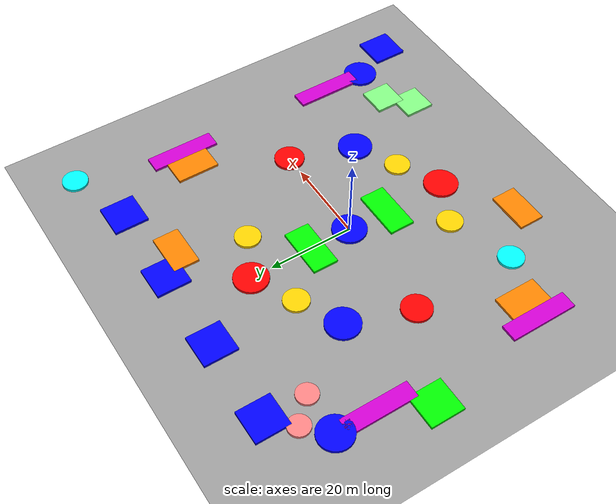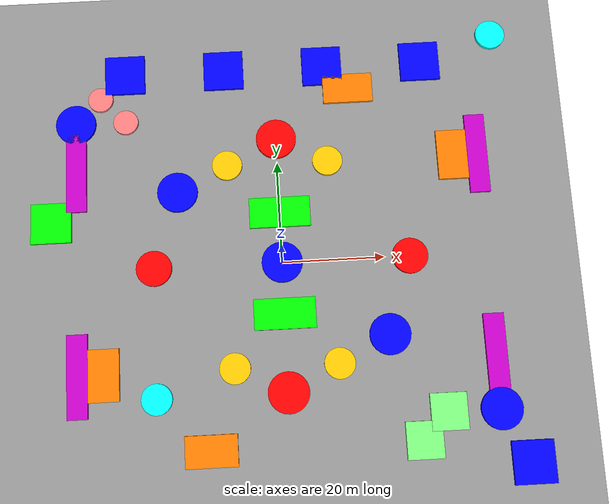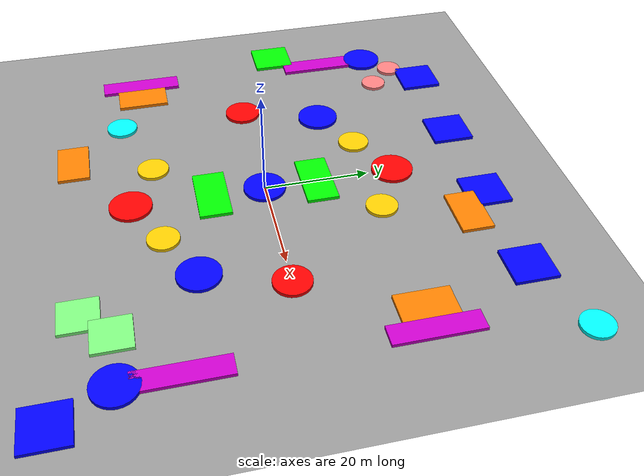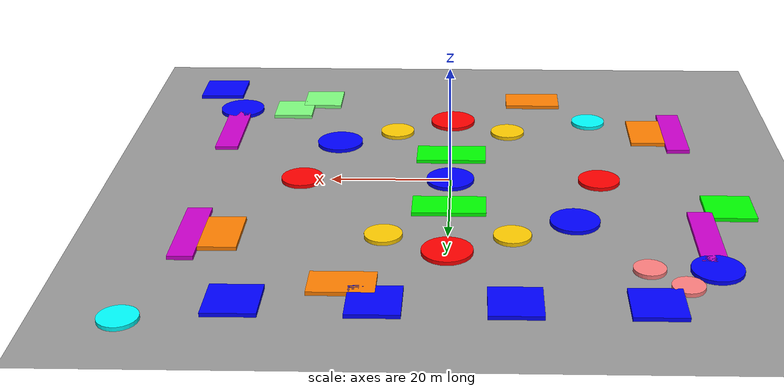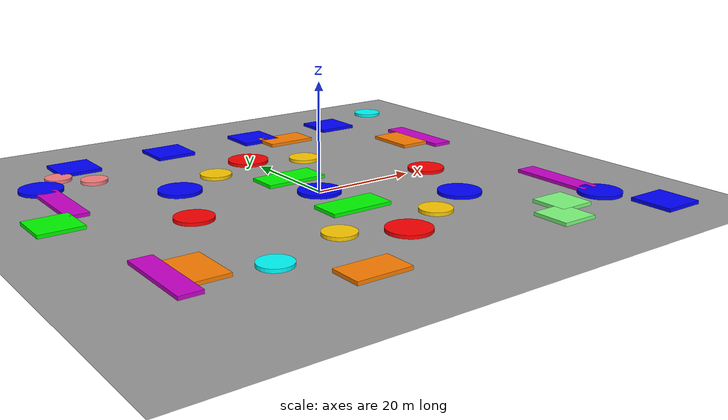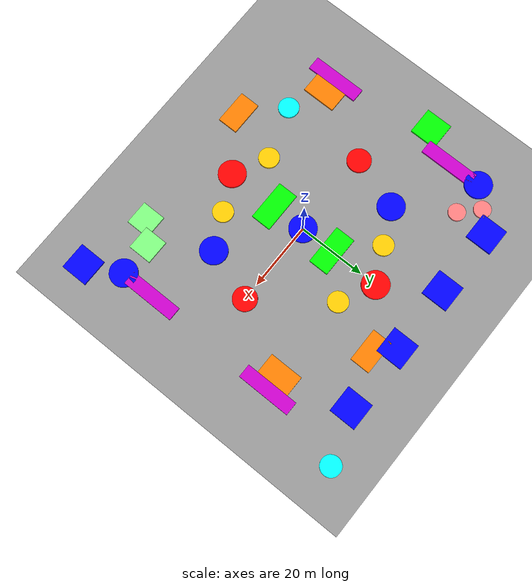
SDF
<sdf version="1.9">
 <world name="default">
  <physics type="ode">
   <max_step_size>0.01</max_step_size>
   <real_time_update_rate>60</real_time_update_rate>
  </physics>
  <model name="ground_plane">
   <static>true</static>
   <link name="link">
    <collision name="collision">
     <geometry><plane><normal>0 0 1</normal><size>100 100</size></plane></geometry>
     <surface><contact><collide_without_contact_bitmask>0x01</collide_without_contact_bitmask></contact></surface>
    </collision>
    <visual name="visual">
     <geometry><plane><normal>0 0 1</normal><size>100 100</size></plane></geometry>
     <material><ambient>0.6 0.6 0.6 1</ambient><diffuse>0.6 0.6 0.6 1</diffuse></material>
    </visual>
   </link>
  </model>
  <model name="moving_cylinder_1">
   <pose>-40.0 30.0 0 0 0 0</pose>
   <link name="moving_link">
    <gravity>false</gravity>
    <visual name="visual">
     <geometry><cylinder><radius>4.0</radius><length>1.0</length></cylinder></geometry>
     <material><ambient>0 0 1 1</ambient></material>
    </visual>
   </link>
   <plugin name="MoverPluginC" filename="/home/sohail/gazeb/GAZEBO_MOV/build/libMoverPluginC.so">
    <link_name>moving_link</link_name>
    <direction>1 0 0</direction>
    <amplitude>0</amplitude>
    <speed>0</speed>
    <turnaround_threshold>0.5</turnaround_threshold>
   </plugin>
  </model>
  <model name="moving_cylinder_2">
   <pose>-20.0 15.0 0 0 0 0</pose>
   <link name="moving_link">
    <gravity>false</gravity>
    <visual name="visual">
     <geometry><cylinder><radius>4.0</radius><length>1.0</length></cylinder></geometry>
     <material><ambient>0 0 1 1</ambient></material>
    </visual>
   </link>
   <plugin name="MoverPluginC" filename="/home/sohail/gazeb/GAZEBO_MOV/build/libMoverPluginC.so">
    <link_name>moving_link</link_name>
    <direction>1 0 0</direction>
    <amplitude>0</amplitude>
    <speed>0</speed>
    <turnaround_threshold>0.5</turnaround_threshold>
   </plugin>
  </model>
  <model name="moving_cylinder_3">
   <link name="moving_link">
    <gravity>false</gravity>
    <visual name="visual">
     <geometry><cylinder><radius>4.0</radius><length>1.0</length></cylinder></geometry>
     <material><ambient>0 0 1 1</ambient></material>
    </visual>
   </link>
   <plugin name="MoverPluginC" filename="/home/sohail/gazeb/GAZEBO_MOV/build/libMoverPluginC.so">
    <link_name>moving_link</link_name>
    <direction>1 0 0</direction>
    <amplitude>0</amplitude>
    <speed>0</speed>
    <turnaround_threshold>0.5</turnaround_threshold>
   </plugin>
  </model>
  <model name="moving_cylinder_4">
   <pose>20.0 -15.0 0 0 0 0</pose>
   <link name="moving_link">
    <gravity>false</gravity>
    <visual name="visual">
     <geometry><cylinder><radius>4.0</radius><length>1.0</length></cylinder></geometry>
     <material><ambient>0 0 1 1</ambient></material>
    </visual>
   </link>
   <plugin name="MoverPluginC" filename="/home/sohail/gazeb/GAZEBO_MOV/build/libMoverPluginC.so">
    <link_name>moving_link</link_name>
    <direction>1 0 0</direction>
    <amplitude>0</amplitude>
    <speed>0</speed>
    <turnaround_threshold>0.5</turnaround_threshold>
   </plugin>
  </model>
  <model name="moving_cylinder_5">
   <pose>40.0 -30.0 0 0 0 0</pose>
   <link name="moving_link">
    <gravity>false</gravity>
    <visual name="visual">
     <geometry><cylinder><radius>4.0</radius><length>1.0</length></cylinder></geometry>
     <material><ambient>0 0 1 1</ambient></material>
    </visual>
   </link>
   <plugin name="MoverPluginC" filename="/home/sohail/gazeb/GAZEBO_MOV/build/libMoverPluginC.so">
    <link_name>moving_link</link_name>
    <direction>1 0 0</direction>
    <amplitude>0</amplitude>
    <speed>0</speed>
    <turnaround_threshold>0.5</turnaround_threshold>
   </plugin>
  </model>
  <model name="moving_box_6">
   <pose>-30.0 40.0 0 0 0 0</pose>
   <link name="moving_link">
    <gravity>false</gravity>
    <visual name="visual">
     <geometry><box><size>8.0 8.0 1.0</size></box></geometry>
     <material><ambient>0 0 1 1</ambient></material>
    </visual>
   </link>
   <plugin name="MoverPluginC" filename="/home/sohail/gazeb/GAZEBO_MOV/build/libMoverPluginC.so">
    <link_name>moving_link</link_name>
    <direction>0 -1 0</direction>
    <amplitude>0</amplitude>
    <speed>0</speed>
    <turnaround_threshold>0.5</turnaround_threshold>
   </plugin>
  </model>
  <model name="moving_box_7">
   <pose>-10.0 40.0 0 0 0 0</pose>
   <link name="moving_link">
    <gravity>false</gravity>
    <visual name="visual">
     <geometry><box><size>8.0 8.0 1.0</size></box></geometry>
     <material><ambient>0 0 1 1</ambient></material>
    </visual>
   </link>
   <plugin name="MoverPluginC" filename="/home/sohail/gazeb/GAZEBO_MOV/build/libMoverPluginC.so">
    <link_name>moving_link</link_name>
    <direction>0 -1 0</direction>
    <amplitude>0</amplitude>
    <speed>0</speed>
    <turnaround_threshold>0.5</turnaround_threshold>
   </plugin>
  </model>
  <model name="moving_box_8">
   <pose>10.0 40.0 0 0 0 0</pose>
   <link name="moving_link">
    <gravity>false</gravity>
    <visual name="visual">
     <geometry><box><size>8.0 8.0 1.0</size></box></geometry>
     <material><ambient>0 0 1 1</ambient></material>
    </visual>
   </link>
   <plugin name="MoverPluginC" filename="/home/sohail/gazeb/GAZEBO_MOV/build/libMoverPluginC.so">
    <link_name>moving_link</link_name>
    <direction>0 -1 0</direction>
    <amplitude>0</amplitude>
    <speed>0</speed>
    <turnaround_threshold>0.5</turnaround_threshold>
   </plugin>
  </model>
  <model name="moving_box_9">
   <pose>30.0 40.0 0 0 0 0</pose>
   <link name="moving_link">
    <gravity>false</gravity>
    <visual name="visual">
     <geometry><box><size>8.0 8.0 1.0</size></box></geometry>
     <material><ambient>0 0 1 1</ambient></material>
    </visual>
   </link>
   <plugin name="MoverPluginC" filename="/home/sohail/gazeb/GAZEBO_MOV/build/libMoverPluginC.so">
    <link_name>moving_link</link_name>
    <direction>0 -1 0</direction>
    <amplitude>0</amplitude>
    <speed>0</speed>
    <turnaround_threshold>0.5</turnaround_threshold>
   </plugin>
  </model>
  <model name="moving_box_10">
   <pose>45.0 -40.0 0 0 0 0</pose>
   <link name="moving_link">
    <gravity>false</gravity>
    <visual name="visual">
     <geometry><box><size>8.0 8.0 1.0</size></box></geometry>
     <material><ambient>0 0 1 1</ambient></material>
    </visual>
   </link>
   <plugin name="MoverPluginC" filename="/home/sohail/gazeb/GAZEBO_MOV/build/libMoverPluginC.so">
    <link_name>moving_link</link_name>
    <direction>0 -1 0</direction>
    <amplitude>0</amplitude>
    <speed>0</speed>
    <turnaround_threshold>0.5</turnaround_threshold>
   </plugin>
  </model>
  <model name="moving_cylinder_11">
   <pose>-25.0 0.0 0 0 0 0</pose>
   <link name="moving_link">
    <gravity>false</gravity>
    <visual name="visual">
     <geometry><cylinder><radius>3.5</radius><length>1.0</length></cylinder></geometry>
     <material><ambient>1 0 0 1</ambient></material>
    </visual>
   </link>
   <plugin name="MoverPluginC" filename="/home/sohail/gazeb/GAZEBO_MOV/build/libMoverPluginC.so">
    <link_name>moving_link</link_name>
    <direction>1 0 0</direction>
    <amplitude>0</amplitude>
    <speed>0</speed>
    <turnaround_threshold>0.5</turnaround_threshold>
   </plugin>
  </model>
  <model name="moving_cylinder_12">
   <pose>25.0 0.0 0 0 0 0</pose>
   <link name="moving_link">
    <gravity>false</gravity>
    <visual name="visual">
     <geometry><cylinder><radius>3.5</radius><length>1.0</length></cylinder></geometry>
     <material><ambient>1 0 0 1</ambient></material>
    </visual>
   </link>
   <plugin name="MoverPluginC" filename="/home/sohail/gazeb/GAZEBO_MOV/build/libMoverPluginC.so">
    <link_name>moving_link</link_name>
    <direction>1 0 0</direction>
    <amplitude>0</amplitude>
    <speed>0</speed>
    <turnaround_threshold>0.5</turnaround_threshold>
   </plugin>
  </model>
  <model name="moving_cylinder_13">
   <pose>0.0 25.0 0 0 0 0</pose>
   <link name="moving_link">
    <gravity>false</gravity>
    <visual name="visual">
     <geometry><cylinder><radius>4.0</radius><length>1.0</length></cylinder></geometry>
     <material><ambient>1 0 0 1</ambient></material>
    </visual>
   </link>
   <plugin name="MoverPluginC" filename="/home/sohail/gazeb/GAZEBO_MOV/build/libMoverPluginC.so">
    <link_name>moving_link</link_name>
    <direction>1 0 0</direction>
    <amplitude>0</amplitude>
    <speed>0</speed>
    <turnaround_threshold>0.5</turnaround_threshold>
   </plugin>
  </model>
  <model name="moving_cylinder_14">
   <pose>0.0 -25.0 0 0 0 0</pose>
   <link name="moving_link">
    <gravity>false</gravity>
    <visual name="visual">
     <geometry><cylinder><radius>4.0</radius><length>1.0</length></cylinder></geometry>
     <material><ambient>1 0 0 1</ambient></material>
    </visual>
   </link>
   <plugin name="MoverPluginC" filename="/home/sohail/gazeb/GAZEBO_MOV/build/libMoverPluginC.so">
    <link_name>moving_link</link_name>
    <direction>1 0 0</direction>
    <amplitude>0</amplitude>
    <speed>0</speed>
    <turnaround_threshold>0.5</turnaround_threshold>
   </plugin>
  </model>
  <model name="moving_box_11">
   <pose>-35.0 -20.0 0 0 0 0</pose>
   <link name="moving_link">
    <gravity>false</gravity>
    <visual name="visual">
     <geometry><box><size>6.0 10.0 1.0</size></box></geometry>
     <material><ambient>1 0.5 0 1</ambient></material>
    </visual>
   </link>
   <plugin name="MoverPluginC" filename="/home/sohail/gazeb/GAZEBO_MOV/build/libMoverPluginC.so">
    <link_name>moving_link</link_name>
    <direction>1 0 0</direction>
    <amplitude>0</amplitude>
    <speed>0</speed>
    <turnaround_threshold>0.5</turnaround_threshold>
   </plugin>
  </model>
  <model name="moving_box_12">
   <pose>35.0 20.0 0 0 0 0</pose>
   <link name="moving_link">
    <gravity>false</gravity>
    <visual name="visual">
     <geometry><box><size>6.0 10.0 1.0</size></box></geometry>
     <material><ambient>1 0.5 0 1</ambient></material>
    </visual>
   </link>
   <plugin name="MoverPluginC" filename="/home/sohail/gazeb/GAZEBO_MOV/build/libMoverPluginC.so">
    <link_name>moving_link</link_name>
    <direction>1 0 0</direction>
    <amplitude>0</amplitude>
    <speed>0</speed>
    <turnaround_threshold>0.5</turnaround_threshold>
   </plugin>
  </model>
  <model name="moving_box_13">
   <pose>-15.0 -35.0 0 0 0 0</pose>
   <link name="moving_link">
    <gravity>false</gravity>
    <visual name="visual">
     <geometry><box><size>10.0 6.0 1.0</size></box></geometry>
     <material><ambient>1 0.5 0 1</ambient></material>
    </visual>
   </link>
   <plugin name="MoverPluginC" filename="/home/sohail/gazeb/GAZEBO_MOV/build/libMoverPluginC.so">
    <link_name>moving_link</link_name>
    <direction>1 0 0</direction>
    <amplitude>0</amplitude>
    <speed>0</speed>
    <turnaround_threshold>0.5</turnaround_threshold>
   </plugin>
  </model>
  <model name="moving_box_14">
   <pose>15.0 35.0 0 0 0 0</pose>
   <link name="moving_link">
    <gravity>false</gravity>
    <visual name="visual">
     <geometry><box><size>10.0 6.0 1.0</size></box></geometry>
     <material><ambient>1 0.5 0 1</ambient></material>
    </visual>
   </link>
   <plugin name="MoverPluginC" filename="/home/sohail/gazeb/GAZEBO_MOV/build/libMoverPluginC.so">
    <link_name>moving_link</link_name>
    <direction>1 0 0</direction>
    <amplitude>0</amplitude>
    <speed>0</speed>
    <turnaround_threshold>0.5</turnaround_threshold>
   </plugin>
  </model>
  <model name="moving_box_15">
   <pose>-45.0 10.0 0 0 0 0</pose>
   <link name="moving_link">
    <gravity>false</gravity>
    <visual name="visual">
     <geometry><box><size>8.0 8.0 1.0</size></box></geometry>
     <material><ambient>0 1 0 1</ambient></material>
    </visual>
   </link>
   <plugin name="MoverPluginC" filename="/home/sohail/gazeb/GAZEBO_MOV/build/libMoverPluginC.so">
    <link_name>moving_link</link_name>
    <direction>1 0 0</direction>
    <amplitude>0</amplitude>
    <speed>0</speed>
    <turnaround_threshold>0.5</turnaround_threshold>
   </plugin>
  </model>
  <model name="moving_box_16">
   <pose>0.0 -10.0 0 0 0 0</pose>
   <link name="moving_link">
    <gravity>false</gravity>
    <visual name="visual">
     <geometry><box><size>12.0 6.0 1.0</size></box></geometry>
     <material><ambient>0 1 0 1</ambient></material>
    </visual>
   </link>
   <plugin name="MoverPluginC" filename="/home/sohail/gazeb/GAZEBO_MOV/build/libMoverPluginC.so">
    <link_name>moving_link</link_name>
    <direction>1 0 0</direction>
    <amplitude>0</amplitude>
    <speed>0</speed>
    <turnaround_threshold>0.5</turnaround_threshold>
   </plugin>
  </model>
  <model name="moving_box_17">
   <pose>0.0 10.0 0 0 0 0</pose>
   <link name="moving_link">
    <gravity>false</gravity>
    <visual name="visual">
     <geometry><box><size>12.0 6.0 1.0</size></box></geometry>
     <material><ambient>0 1 0 1</ambient></material>
    </visual>
   </link>
   <plugin name="MoverPluginC" filename="/home/sohail/gazeb/GAZEBO_MOV/build/libMoverPluginC.so">
    <link_name>moving_link</link_name>
    <direction>1 0 0</direction>
    <amplitude>0</amplitude>
    <speed>0</speed>
    <turnaround_threshold>0.5</turnaround_threshold>
   </plugin>
  </model>
  <model name="moving_cylinder_15">
   <pose>45.0 45.0 0 0 0 0</pose>
   <link name="moving_link">
    <gravity>false</gravity>
    <visual name="visual">
     <geometry><cylinder><radius>3.0</radius><length>1.0</length></cylinder></geometry>
     <material><ambient>0 1 1 1</ambient></material>
    </visual>
   </link>
   <plugin name="MoverPluginC" filename="/home/sohail/gazeb/GAZEBO_MOV/build/libMoverPluginC.so">
    <link_name>moving_link</link_name>
    <direction>1 0 0</direction>
    <amplitude>0</amplitude>
    <speed>0</speed>
    <turnaround_threshold>0.5</turnaround_threshold>
   </plugin>
  </model>
  <model name="moving_cylinder_16">
   <pose>-25.0 -25.0 0 0 0 0</pose>
   <link name="moving_link">
    <gravity>false</gravity>
    <visual name="visual">
     <geometry><cylinder><radius>3.0</radius><length>1.0</length></cylinder></geometry>
     <material><ambient>0 1 1 1</ambient></material>
    </visual>
   </link>
   <plugin name="MoverPluginC" filename="/home/sohail/gazeb/GAZEBO_MOV/build/libMoverPluginC.so">
    <link_name>moving_link</link_name>
    <direction>1 0 0</direction>
    <amplitude>0</amplitude>
    <speed>0</speed>
    <turnaround_threshold>0.5</turnaround_threshold>
   </plugin>
  </model>
  <model name="moving_cylinder_17">
   <pose>-10.0 20.0 0 0 0 0</pose>
   <link name="moving_link">
    <gravity>false</gravity>
    <visual name="visual">
     <geometry><cylinder><radius>3.0</radius><length>1.0</length></cylinder></geometry>
     <material><ambient>1 0.8 0 1</ambient></material>
    </visual>
   </link>
   <plugin name="MoverPluginC" filename="/home/sohail/gazeb/GAZEBO_MOV/build/libMoverPluginC.so">
    <link_name>moving_link</link_name>
    <direction>1 0 0</direction>
    <amplitude>0</amplitude>
    <speed>0</speed>
    <turnaround_threshold>0.5</turnaround_threshold>
   </plugin>
  </model>
  <model name="moving_cylinder_18">
   <pose>10.0 20.0 0 0 0 0</pose>
   <link name="moving_link">
    <gravity>false</gravity>
    <visual name="visual">
     <geometry><cylinder><radius>3.0</radius><length>1.0</length></cylinder></geometry>
     <material><ambient>1 0.8 0 1</ambient></material>
    </visual>
   </link>
   <plugin name="MoverPluginC" filename="/home/sohail/gazeb/GAZEBO_MOV/build/libMoverPluginC.so">
    <link_name>moving_link</link_name>
    <direction>1 0 0</direction>
    <amplitude>0</amplitude>
    <speed>0</speed>
    <turnaround_threshold>0.5</turnaround_threshold>
   </plugin>
  </model>
  <model name="moving_cylinder_19">
   <pose>-10.0 -20.0 0 0 0 0</pose>
   <link name="moving_link">
    <gravity>false</gravity>
    <visual name="visual">
     <geometry><cylinder><radius>3.0</radius><length>1.0</length></cylinder></geometry>
     <material><ambient>1 0.8 0 1</ambient></material>
    </visual>
   </link>
   <plugin name="MoverPluginC" filename="/home/sohail/gazeb/GAZEBO_MOV/build/libMoverPluginC.so">
    <link_name>moving_link</link_name>
    <direction>1 0 0</direction>
    <amplitude>0</amplitude>
    <speed>0</speed>
    <turnaround_threshold>0.5</turnaround_threshold>
   </plugin>
  </model>
  <model name="moving_cylinder_20">
   <pose>10.0 -20.0 0 0 0 0</pose>
   <link name="moving_link">
    <gravity>false</gravity>
    <visual name="visual">
     <geometry><cylinder><radius>3.0</radius><length>1.0</length></cylinder></geometry>
     <material><ambient>1 0.8 0 1</ambient></material>
    </visual>
   </link>
   <plugin name="MoverPluginC" filename="/home/sohail/gazeb/GAZEBO_MOV/build/libMoverPluginC.so">
    <link_name>moving_link</link_name>
    <direction>1 0 0</direction>
    <amplitude>0</amplitude>
    <speed>0</speed>
    <turnaround_threshold>0.5</turnaround_threshold>
   </plugin>
  </model>
  <model name="moving_box_18">
   <pose>-40.0 20.0 0 0 0 0</pose>
   <link name="moving_link">
    <gravity>false</gravity>
    <visual name="visual">
     <geometry><box><size>4.0 16.0 1.0</size></box></geometry>
     <material><ambient>0.8 0 0.8 1</ambient></material>
    </visual>
   </link>
   <plugin name="MoverPluginC" filename="/home/sohail/gazeb/GAZEBO_MOV/build/libMoverPluginC.so">
    <link_name>moving_link</link_name>
    <direction>1 0 0</direction>
    <amplitude>0</amplitude>
    <speed>0</speed>
    <turnaround_threshold>0.5</turnaround_threshold>
   </plugin>
  </model>
  <model name="moving_box_19">
   <pose>-40.0 -20.0 0 0 0 0</pose>
   <link name="moving_link">
    <gravity>false</gravity>
    <visual name="visual">
     <geometry><box><size>4.0 16.0 1.0</size></box></geometry>
     <material><ambient>0.8 0 0.8 1</ambient></material>
    </visual>
   </link>
   <plugin name="MoverPluginC" filename="/home/sohail/gazeb/GAZEBO_MOV/build/libMoverPluginC.so">
    <link_name>moving_link</link_name>
    <direction>1 0 0</direction>
    <amplitude>0</amplitude>
    <speed>0</speed>
    <turnaround_threshold>0.5</turnaround_threshold>
   </plugin>
  </model>
  <model name="moving_box_20">
   <pose>40.0 20.0 0 0 0 0</pose>
   <link name="moving_link">
    <gravity>false</gravity>
    <visual name="visual">
     <geometry><box><size>4.0 16.0 1.0</size></box></geometry>
     <material><ambient>0.8 0 0.8 1</ambient></material>
    </visual>
   </link>
   <plugin name="MoverPluginC" filename="/home/sohail/gazeb/GAZEBO_MOV/build/libMoverPluginC.so">
    <link_name>moving_link</link_name>
    <direction>1 0 0</direction>
    <amplitude>0</amplitude>
    <speed>0</speed>
    <turnaround_threshold>0.5</turnaround_threshold>
   </plugin>
  </model>
  <model name="moving_box_21">
   <pose>40.0 -20.0 0 0 0 0</pose>
   <link name="moving_link">
    <gravity>false</gravity>
    <visual name="visual">
     <geometry><box><size>4.0 16.0 1.0</size></box></geometry>
     <material><ambient>0.8 0 0.8 1</ambient></material>
    </visual>
   </link>
   <plugin name="MoverPluginC" filename="/home/sohail/gazeb/GAZEBO_MOV/build/libMoverPluginC.so">
    <link_name>moving_link</link_name>
    <direction>1 0 0</direction>
    <amplitude>0</amplitude>
    <speed>0</speed>
    <turnaround_threshold>0.5</turnaround_threshold>
   </plugin>
  </model>
  <model name="moving_cylinder_21">
   <pose>-30.0 30.0 0 0 0 0</pose>
   <link name="moving_link">
    <gravity>false</gravity>
    <visual name="visual">
     <geometry><cylinder><radius>2.5</radius><length>1.0</length></cylinder></geometry>
     <material><ambient>1 0.5 0.5 1</ambient></material>
    </visual>
   </link>
   <plugin name="MoverPluginC" filename="/home/sohail/gazeb/GAZEBO_MOV/build/libMoverPluginC.so">
    <link_name>moving_link</link_name>
    <direction>1 0 0</direction>
    <amplitude>0</amplitude>
    <speed>0</speed>
    <turnaround_threshold>0.5</turnaround_threshold>
   </plugin>
  </model>
  <model name="moving_cylinder_22">
   <pose>-35.0 35.0 0 0 0 0</pose>
   <link name="moving_link">
    <gravity>false</gravity>
    <visual name="visual">
     <geometry><cylinder><radius>2.5</radius><length>1.0</length></cylinder></geometry>
     <material><ambient>1 0.5 0.5 1</ambient></material>
    </visual>
   </link>
   <plugin name="MoverPluginC" filename="/home/sohail/gazeb/GAZEBO_MOV/build/libMoverPluginC.so">
    <link_name>moving_link</link_name>
    <direction>1 0 0</direction>
    <amplitude>0</amplitude>
    <speed>0</speed>
    <turnaround_threshold>0.5</turnaround_threshold>
   </plugin>
  </model>
  <model name="moving_box_22">
   <pose>30.0 -30.0 0 0 0 0</pose>
   <link name="moving_link">
    <gravity>false</gravity>
    <visual name="visual">
     <geometry><box><size>7.0 7.0 1.0</size></box></geometry>
     <material><ambient>0.5 1 0.5 1</ambient></material>
    </visual>
   </link>
   <plugin name="MoverPluginC" filename="/home/sohail/gazeb/GAZEBO_MOV/build/libMoverPluginC.so">
    <link_name>moving_link</link_name>
    <direction>1 0 0</direction>
    <amplitude>0</amplitude>
    <speed>0</speed>
    <turnaround_threshold>0.5</turnaround_threshold>
   </plugin>
  </model>
  <model name="moving_box_23">
   <pose>25.0 -35.0 0 0 0 0</pose>
   <link name="moving_link">
    <gravity>false</gravity>
    <visual name="visual">
     <geometry><box><size>7.0 7.0 1.0</size></box></geometry>
     <material><ambient>0.5 1 0.5 1</ambient></material>
    </visual>
   </link>
   <plugin name="MoverPluginC" filename="/home/sohail/gazeb/GAZEBO_MOV/build/libMoverPluginC.so">
    <link_name>moving_link</link_name>
    <direction>1 0 0</direction>
    <amplitude>0</amplitude>
    <speed>0</speed>
    <turnaround_threshold>0.5</turnaround_threshold>
   </plugin>
  </model>
 </world>
</sdf>
